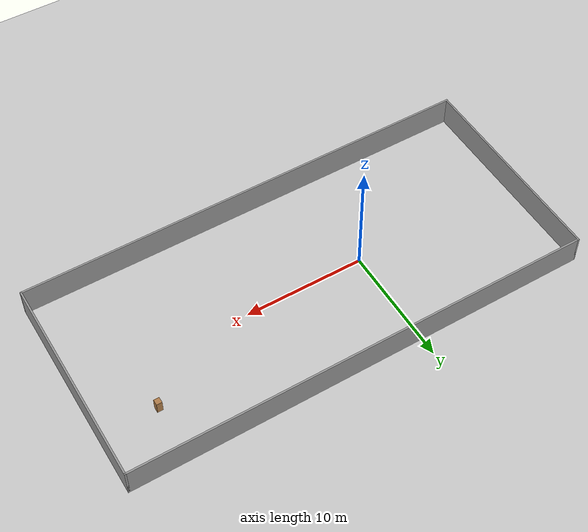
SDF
<sdf version="1.7">
 <world name="default">
  <light name="sun" type="directional">
   <pose>0 0 10 0 -0 0</pose>
   <diffuse>0.8 0.8 0.8 1</diffuse>
   <specular>0.2 0.2 0.2 1</specular>
   <attenuation>
    <range>1000</range>
    <constant>0.9</constant>
    <linear>0.01</linear>
    <quadratic>0.001</quadratic>
   </attenuation>
   <direction>-0.5 0.1 -0.9</direction>
   <spot><inner_angle>0</inner_angle><outer_angle>0</outer_angle><falloff>0</falloff></spot>
  </light>
  <model name="ground_plane">
   <static>1</static>
   <link name="link">
    <collision name="collision">
     <geometry><plane><normal>0 0 1</normal><size>100 100</size></plane></geometry>
     <surface>
      <contact><collide_bitmask>65535</collide_bitmask></contact>
      <friction><ode><mu>100</mu><mu2>50</mu2></ode></friction>
     </surface>
    </collision>
    <visual name="visual">
     <cast_shadows>0</cast_shadows>
     <geometry><plane><normal>0 0 1</normal><size>100 100</size></plane></geometry>
     <material>
      <script><uri>file://media/materials/scripts/gazebo.material</uri><name>Gazebo/Grey</name></script>
     </material>
    </visual>
   </link>
  </model>
  <gravity>0 0 -9.8</gravity>
  <magnetic_field>6e-06 2.3e-05 -4.2e-05</magnetic_field>
  <atmosphere type="adiabatic"/>
  <physics type="ode">
   <max_step_size>0.001</max_step_size>
   <real_time_factor>1</real_time_factor>
   <real_time_update_rate>1000</real_time_update_rate>
  </physics>
  <scene><ambient>0.4 0.4 0.4 1</ambient><background>0.7 0.7 0.7 1</background><shadows>1</shadows></scene>
  <audio><device>default</device></audio>
  <spherical_coordinates>
   <surface_model>EARTH_WGS84</surface_model>
   <latitude_deg>0</latitude_deg>
   <longitude_deg>0</longitude_deg>
   <elevation>0</elevation>
   <heading_deg>0</heading_deg>
  </spherical_coordinates>
  <model name="cabinet">
   <static>1</static>
   <link name="cabinet_bottom_plate">
    <inertial>
     <pose>0 0 -1 0 -0 0</pose>
     <inertia><ixx>2.05</ixx><ixy>0</ixy><ixz>0</ixz><iyy>2.05</iyy><iyz>0</iyz><izz>2.05</izz></inertia>
     <mass>25</mass>
    </inertial>
    <collision name="cabinet_bottom_plate_geom">
     <pose>0 0 0.01 0 -0 0</pose>
     <geometry><box><size>0.45 0.45 0.02</size></box></geometry>
    </collision>
    <visual name="cabinet_bottom_plate_geom_visual">
     <pose>0 0 0.01 0 -0 0</pose>
     <geometry><box><size>0.45 0.45 0.02</size></box></geometry>
     <material>
      <script><uri>file://media/materials/scripts/gazebo.material</uri><name>Gazebo/Wood</name></script>
     </material>
    </visual>
    <collision name="cabinet_bottom_plate_geom_cabinet_back_plate">
     <pose>0.235 0 0.51 0 -0 0</pose>
     <geometry><box><size>0.02 0.45 1.02</size></box></geometry>
    </collision>
    <visual name="cabinet_bottom_plate_geom_cabinet_back_plate_visual">
     <pose>0.235 0 0.51 0 -0 0</pose>
     <geometry><box><size>0.02 0.45 1.02</size></box></geometry>
     <material>
      <script><uri>file://media/materials/scripts/gazebo.material</uri><name>Gazebo/Wood</name></script>
     </material>
    </visual>
    <collision name="cabinet_bottom_plate_geom_cabinet_left_plate">
     <pose>0 0.235 0.51 0 -0 0</pose>
     <geometry><box><size>0.45 0.02 1.02</size></box></geometry>
    </collision>
    <visual name="cabinet_bottom_plate_geom_cabinet_left_plate_visual">
     <pose>0 0.235 0.51 0 -0 0</pose>
     <geometry><box><size>0.45 0.02 1.02</size></box></geometry>
     <material>
      <script><uri>file://media/materials/scripts/gazebo.material</uri><name>Gazebo/Wood</name></script>
     </material>
    </visual>
    <collision name="cabinet_bottom_plate_geom_cabinet_middle_plate">
     <pose>0 0 0.51 0 -0 0</pose>
     <geometry><box><size>0.45 0.45 0.02</size></box></geometry>
    </collision>
    <visual name="cabinet_bottom_plate_geom_cabinet_middle_plate_visual">
     <pose>0 0 0.51 0 -0 0</pose>
     <geometry><box><size>0.45 0.45 0.02</size></box></geometry>
     <material>
      <script><uri>file://media/materials/scripts/gazebo.material</uri><name>Gazebo/Wood</name></script>
     </material>
    </visual>
    <collision name="cabinet_bottom_plate_geom_cabinet_right_plate">
     <pose>0 -0.235 0.51 0 -0 0</pose>
     <geometry><box><size>0.45 0.02 1.02</size></box></geometry>
    </collision>
    <visual name="cabinet_bottom_plate_geom_cabinet_right_plate_visual">
     <pose>0 -0.235 0.51 0 -0 0</pose>
     <geometry><box><size>0.45 0.02 1.02</size></box></geometry>
     <material>
      <script><uri>file://media/materials/scripts/gazebo.material</uri><name>Gazebo/Wood</name></script>
     </material>
    </visual>
    <collision name="cabinet_bottom_plate_geom_cabinet_top_plate">
     <pose>0 0 1.01 0 -0 0</pose>
     <geometry><box><size>0.45 0.45 0.02</size></box></geometry>
    </collision>
    <visual name="cabinet_bottom_plate_geom_cabinet_top_plate_visual">
     <pose>0 0 1.01 0 -0 0</pose>
     <geometry><box><size>0.45 0.45 0.02</size></box></geometry>
     <material>
      <script><uri>file://media/materials/scripts/gazebo.material</uri><name>Gazebo/Wood</name></script>
     </material>
    </visual>
   </link>
   <pose>19.3649 3.74528 0 0 -0 0</pose>
  </model>
  <model name="Untitled">
   <pose>4.90758 -0.201989 0 0 -0 0</pose>
   <link name="Wall_2">
    <collision name="Wall_2_Collision">
     <geometry><box><size>38.5 0.15 2.5</size></box></geometry>
     <pose>0 0 1.25 0 -0 0</pose>
    </collision>
    <visual name="Wall_2_Visual">
     <pose>0 0 1.25 0 -0 0</pose>
     <geometry><box><size>38.5 0.15 2.5</size></box></geometry>
     <material>
      <script><uri>file://media/materials/scripts/gazebo.material</uri><name>Gazebo/Grey</name></script>
      <ambient>1 1 1 1</ambient>
     </material>
     <meta><layer>0</layer></meta>
    </visual>
    <pose>0 -8.675 0 0 -0 3.14159</pose>
   </link>
   <link name="Wall_3">
    <collision name="Wall_3_Collision">
     <geometry><box><size>17.5 0.15 2.5</size></box></geometry>
     <pose>0 0 1.25 0 -0 0</pose>
    </collision>
    <visual name="Wall_3_Visual">
     <pose>0 0 1.25 0 -0 0</pose>
     <geometry><box><size>17.5 0.15 2.5</size></box></geometry>
     <material>
      <script><uri>file://media/materials/scripts/gazebo.material</uri><name>Gazebo/Grey</name></script>
      <ambient>1 1 1 1</ambient>
     </material>
     <meta><layer>0</layer></meta>
    </visual>
    <pose>-19.175 0 0 0 -0 1.5708</pose>
   </link>
   <link name="Wall_4">
    <collision name="Wall_4_Collision">
     <geometry><box><size>38.5 0.15 2.5</size></box></geometry>
     <pose>0 0 1.25 0 -0 0</pose>
    </collision>
    <visual name="Wall_4_Visual">
     <pose>0 0 1.25 0 -0 0</pose>
     <geometry><box><size>38.5 0.15 2.5</size></box></geometry>
     <material>
      <script><uri>file://media/materials/scripts/gazebo.material</uri><name>Gazebo/Grey</name></script>
      <ambient>1 1 1 1</ambient>
     </material>
     <meta><layer>0</layer></meta>
    </visual>
    <pose>0 8.675 0 0 -0 0</pose>
   </link>
   <link name="Wall_5">
    <collision name="Wall_5_Collision">
     <geometry><box><size>17.5 0.15 2.5</size></box></geometry>
     <pose>0 0 1.25 0 -0 0</pose>
    </collision>
    <visual name="Wall_5_Visual">
     <pose>0 0 1.25 0 -0 0</pose>
     <geometry><box><size>17.5 0.15 2.5</size></box></geometry>
     <material>
      <script><uri>file://media/materials/scripts/gazebo.material</uri><name>Gazebo/Grey</name></script>
      <ambient>1 1 1 1</ambient>
     </material>
     <meta><layer>0</layer></meta>
    </visual>
    <pose>19.175 0 0 0 -0 -1.5708</pose>
   </link>
   <static>1</static>
  </model>
  <model name="dummy_robot">
   <static>true</static>
   <pose>-20 -20 0 0 0 0</pose>
   <link name="link">
    <collision name="collision">
     <geometry><cylinder><radius>0.01</radius><length>0.01</length></cylinder></geometry>
    </collision>
    <visual name="visual">
     <geometry><cylinder><radius>0.01</radius><length>0.01</length></cylinder></geometry>
    </visual>
   </link>
  </model>
 </world>
</sdf>
